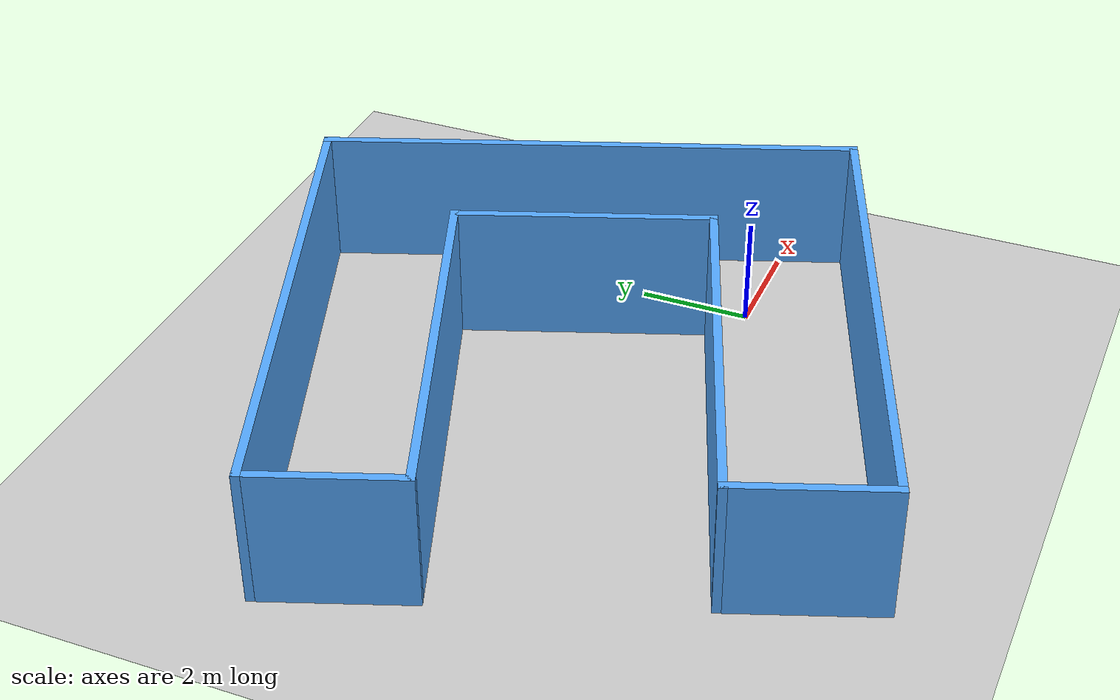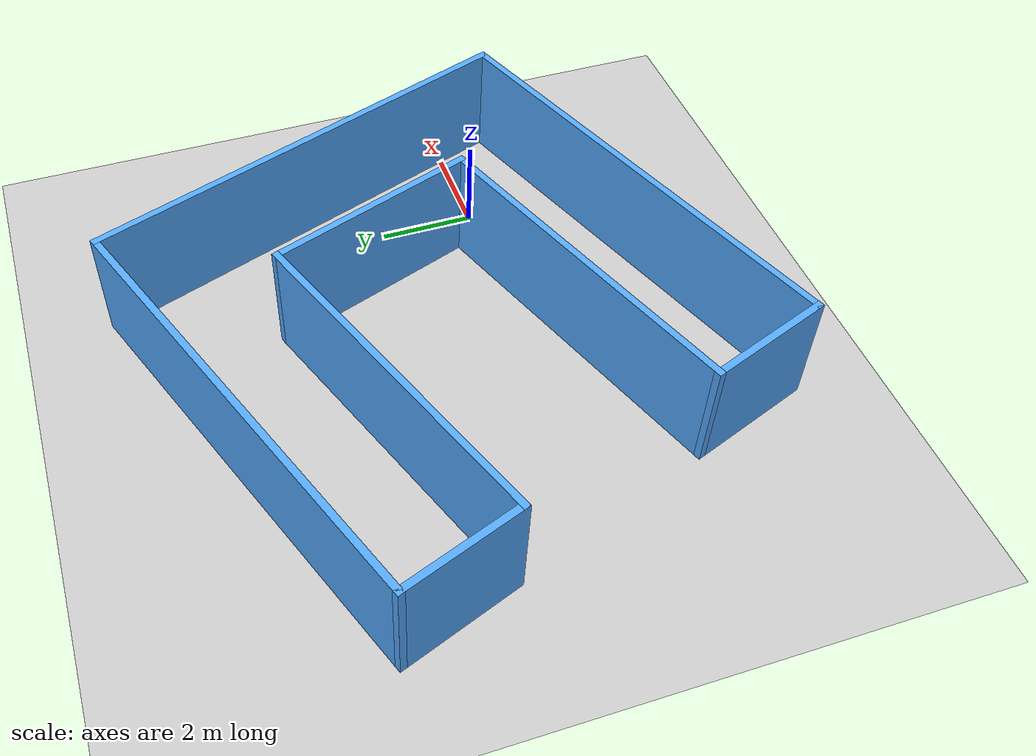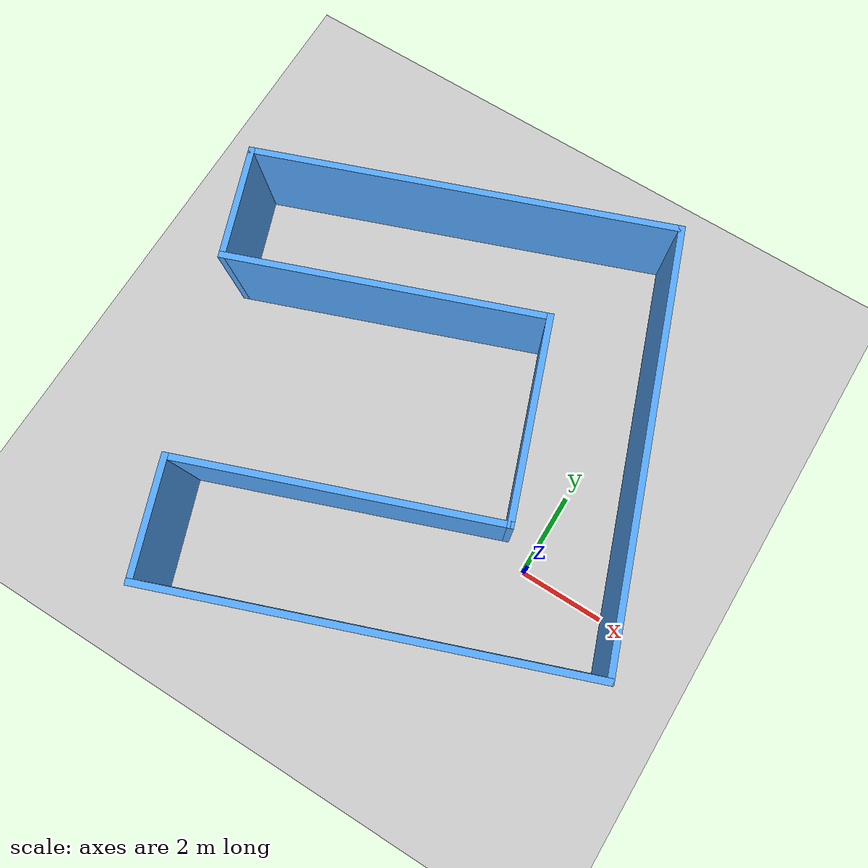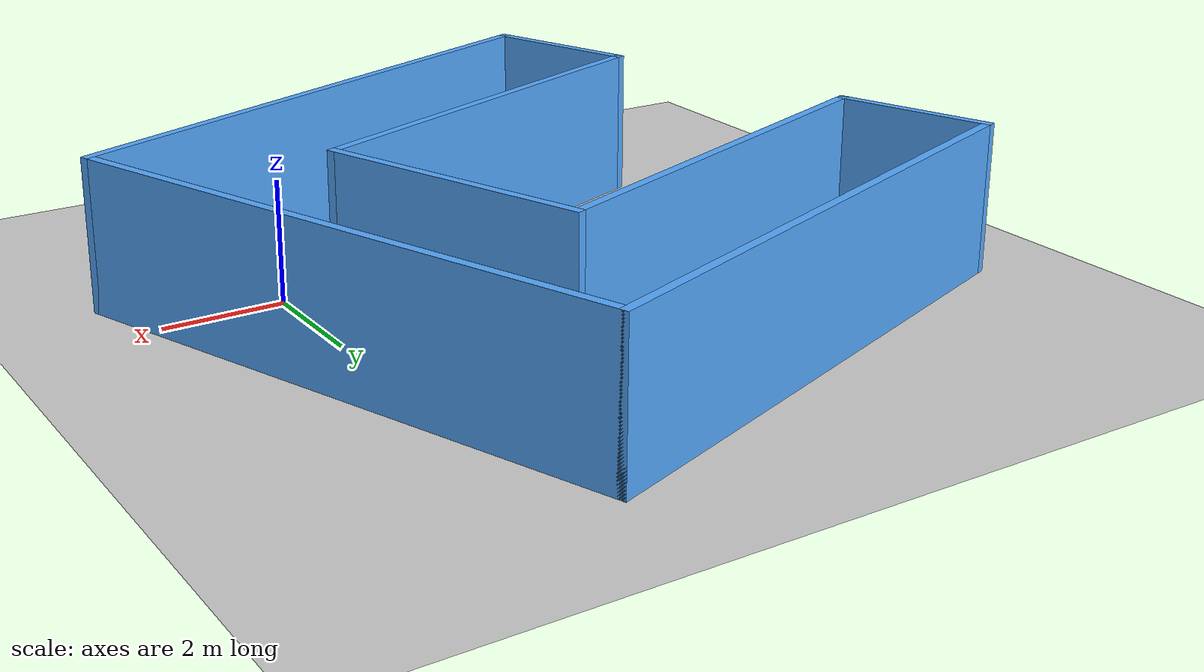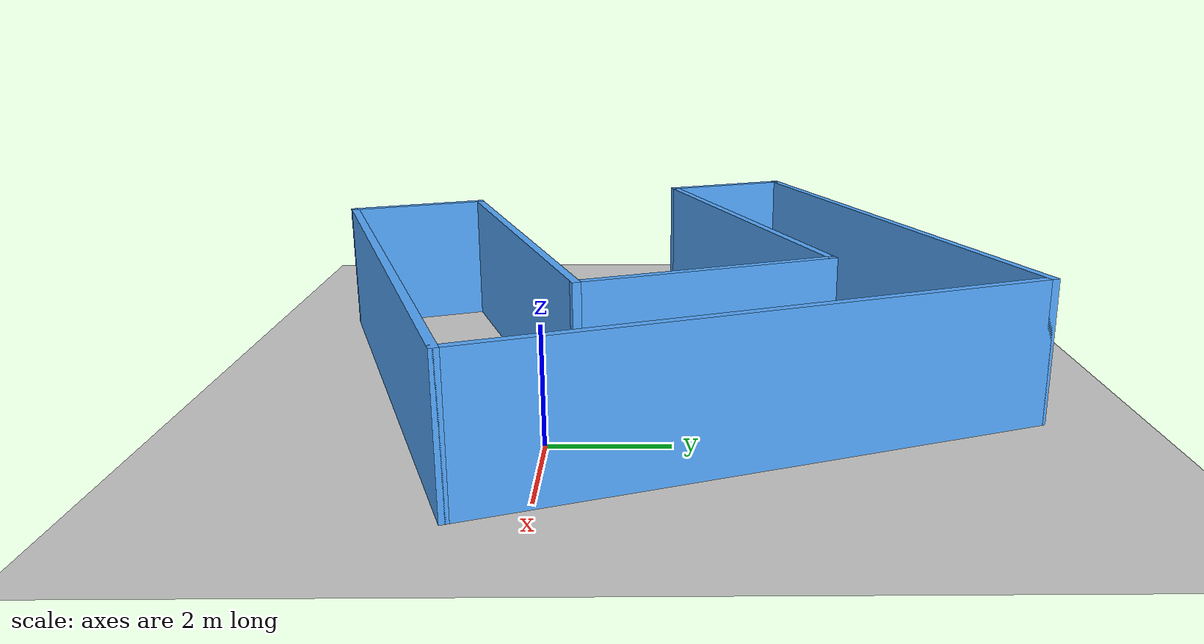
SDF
<sdf version="1.6">
 <world name="default">
  <light name="sun" type="directional">
   <pose>0 0 10 0 -0 0</pose>
   <diffuse>0.8 0.8 0.8 1</diffuse>
   <specular>0.2 0.2 0.2 1</specular>
   <attenuation>
    <range>1000</range>
    <constant>0.9</constant>
    <linear>0.01</linear>
    <quadratic>0.001</quadratic>
   </attenuation>
   <direction>-0.5 0.1 -0.9</direction>
  </light>
  <model name="ground_plane">
   <static>1</static>
   <link name="link">
    <collision name="collision">
     <geometry><plane><normal>0 0 1</normal><size>100 100</size></plane></geometry>
     <surface>
      <contact><collide_bitmask>65535</collide_bitmask></contact>
      <friction><ode><mu>100</mu><mu2>50</mu2></ode></friction>
     </surface>
    </collision>
    <visual name="visual">
     <cast_shadows>0</cast_shadows>
     <geometry><plane><normal>0 0 1</normal><size>100 100</size></plane></geometry>
     <material>
      <script><uri>file://media/materials/scripts/gazebo.material</uri><name>Gazebo/Grey</name></script>
     </material>
    </visual>
   </link>
  </model>
  <gravity>0 0 -9.8</gravity>
  <magnetic_field>6e-06 2.3e-05 -4.2e-05</magnetic_field>
  <atmosphere type="adiabatic"/>
  <physics name="default_physics" default="0" type="ode">
   <max_step_size>0.001</max_step_size>
   <real_time_factor>1</real_time_factor>
   <real_time_update_rate>1000</real_time_update_rate>
  </physics>
  <scene><ambient>0.4 0.4 0.4 1</ambient><background>0.7 0.7 0.7 1</background><shadows>1</shadows></scene>
  <spherical_coordinates>
   <surface_model>EARTH_WGS84</surface_model>
   <latitude_deg>0</latitude_deg>
   <longitude_deg>0</longitude_deg>
   <elevation>0</elevation>
   <heading_deg>0</heading_deg>
  </spherical_coordinates>
  <model name="blue_u">
   <pose>-3.78824 1.78734 0 0 -0 1.92058</pose>
   <link name="Wall_13">
    <collision name="Wall_13_Collision">
     <geometry><box><size>10 0.15 2.5</size></box></geometry>
     <pose>0 0 1.25 0 -0 0</pose>
    </collision>
    <visual name="Wall_13_Visual">
     <pose>0 0 1.25 0 -0 0</pose>
     <geometry><box><size>10 0.15 2.5</size></box></geometry>
     <material>
      <script><uri>file://media/materials/scripts/gazebo.material</uri><name>Gazebo/Grey</name></script>
      <ambient>0.333333 0.666667 1 1</ambient>
     </material>
     <meta><layer>0</layer></meta>
    </visual>
    <pose>4.925 0 0 0 -0 1.5708</pose>
   </link>
   <link name="Wall_2">
    <collision name="Wall_2_Collision">
     <geometry><box><size>10 0.15 2.5</size></box></geometry>
     <pose>0 0 1.25 0 -0 0</pose>
    </collision>
    <visual name="Wall_2_Visual">
     <pose>0 0 1.25 0 -0 0</pose>
     <geometry><box><size>10 0.15 2.5</size></box></geometry>
     <material>
      <script><uri>file://media/materials/scripts/gazebo.material</uri><name>Gazebo/Grey</name></script>
      <ambient>0.333333 0.666667 1 1</ambient>
     </material>
     <meta><layer>0</layer></meta>
    </visual>
    <pose>-4.925 0 0 0 0 -1.5708</pose>
   </link>
   <link name="Wall_27">
    <collision name="Wall_27_Collision">
     <geometry><box><size>7.5 0.15 2.5</size></box></geometry>
     <pose>0 0 1.25 0 -0 0</pose>
    </collision>
    <visual name="Wall_27_Visual">
     <pose>0 0 1.25 0 -0 0</pose>
     <geometry><box><size>7.5 0.15 2.5</size></box></geometry>
     <material>
      <script><uri>file://media/materials/scripts/gazebo.material</uri><name>Gazebo/Grey</name></script>
      <ambient>0.333333 0.666667 1 1</ambient>
     </material>
     <meta><layer>0</layer></meta>
    </visual>
    <pose>-2.275 1.25 0 0 -0 1.5708</pose>
   </link>
   <link name="Wall_28">
    <collision name="Wall_28_Collision">
     <geometry><box><size>2.8 0.15 2.5</size></box></geometry>
     <pose>0 0 1.25 0 -0 0</pose>
    </collision>
    <visual name="Wall_28_Visual">
     <pose>0 0 1.25 0 -0 0</pose>
     <geometry><box><size>2.8 0.15 2.5</size></box></geometry>
     <material>
      <script><uri>file://media/materials/scripts/gazebo.material</uri><name>Gazebo/Grey</name></script>
      <ambient>0.333333 0.666667 1 1</ambient>
     </material>
     <meta><layer>0</layer></meta>
    </visual>
    <pose>-3.6 4.925 0 0 -0 3.14159</pose>
   </link>
   <link name="Wall_30">
    <collision name="Wall_30_Collision">
     <geometry><box><size>2.75 0.15 2.5</size></box></geometry>
     <pose>0 0 1.25 0 -0 0</pose>
    </collision>
    <visual name="Wall_30_Visual">
     <pose>0 0 1.25 0 -0 0</pose>
     <geometry><box><size>2.75 0.15 2.5</size></box></geometry>
     <material>
      <script><uri>file://media/materials/scripts/gazebo.material</uri><name>Gazebo/Grey</name></script>
      <ambient>0.333333 0.666667 1 1</ambient>
     </material>
     <meta><layer>0</layer></meta>
    </visual>
    <pose>3.625 4.925 0 0 -0 3.14159</pose>
   </link>
   <link name="Wall_31">
    <collision name="Wall_31_Collision">
     <geometry><box><size>7.5 0.15 2.5</size></box></geometry>
     <pose>0 0 1.25 0 -0 0</pose>
    </collision>
    <visual name="Wall_31_Visual">
     <pose>0 0 1.25 0 -0 0</pose>
     <geometry><box><size>7.5 0.15 2.5</size></box></geometry>
     <material>
      <script><uri>file://media/materials/scripts/gazebo.material</uri><name>Gazebo/Grey</name></script>
      <ambient>0.333333 0.666667 1 1</ambient>
     </material>
     <meta><layer>0</layer></meta>
    </visual>
    <pose>2.325 1.25 0 0 0 -1.5708</pose>
   </link>
   <link name="Wall_32">
    <collision name="Wall_32_Collision">
     <geometry><box><size>4.75 0.15 2.5</size></box></geometry>
     <pose>0 0 1.25 0 -0 0</pose>
    </collision>
    <visual name="Wall_32_Visual">
     <pose>0 0 1.25 0 -0 0</pose>
     <geometry><box><size>4.75 0.15 2.5</size></box></geometry>
     <material>
      <script><uri>file://media/materials/scripts/gazebo.material</uri><name>Gazebo/Grey</name></script>
      <ambient>0.333333 0.666667 1 1</ambient>
     </material>
     <meta><layer>0</layer></meta>
    </visual>
    <pose>0.025 -2.425 0 0 -0 3.14159</pose>
   </link>
   <link name="Wall_7">
    <collision name="Wall_7_Collision">
     <geometry><box><size>10 0.15 2.5</size></box></geometry>
     <pose>0 0 1.25 0 -0 0</pose>
    </collision>
    <visual name="Wall_7_Visual">
     <pose>0 0 1.25 0 -0 0</pose>
     <geometry><box><size>10 0.15 2.5</size></box></geometry>
     <material>
      <script><uri>file://media/materials/scripts/gazebo.material</uri><name>Gazebo/Grey</name></script>
      <ambient>0.333333 0.666667 1 1</ambient>
     </material>
     <meta><layer>0</layer></meta>
    </visual>
    <pose>0 -4.925 0 0 -0 0</pose>
   </link>
   <static>1</static>
  </model>
 </world>
</sdf>
